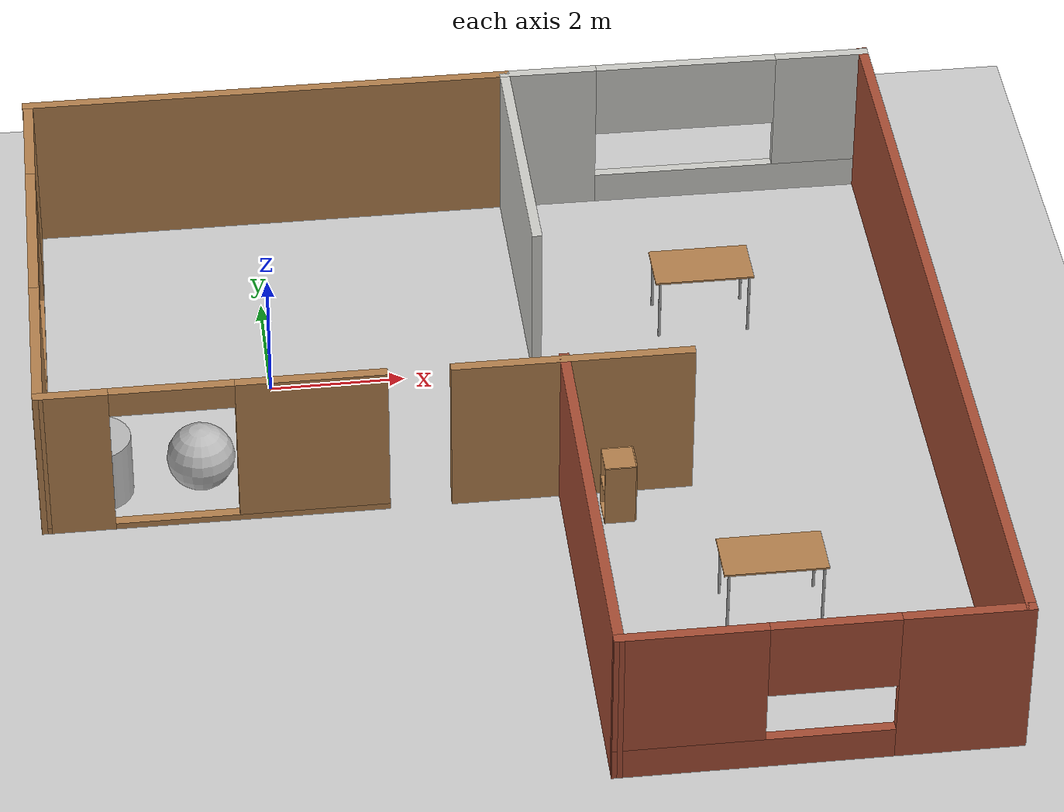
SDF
<sdf version="1.6">
 <world name="default">
  <light name="sun" type="directional">
   <pose>0 0 10 0 -0 0</pose>
   <diffuse>0.8 0.8 0.8 1</diffuse>
   <specular>0.2 0.2 0.2 1</specular>
   <attenuation>
    <range>1000</range>
    <constant>0.9</constant>
    <linear>0.01</linear>
    <quadratic>0.001</quadratic>
   </attenuation>
   <direction>-0.5 0.1 -0.9</direction>
  </light>
  <model name="ground_plane">
   <static>1</static>
   <link name="link">
    <collision name="collision">
     <geometry><plane><normal>0 0 1</normal><size>100 100</size></plane></geometry>
     <surface>
      <contact><collide_bitmask>65535</collide_bitmask></contact>
      <friction><ode><mu>100</mu><mu2>50</mu2></ode></friction>
     </surface>
    </collision>
    <visual name="visual">
     <cast_shadows>0</cast_shadows>
     <geometry><plane><normal>0 0 1</normal><size>100 100</size></plane></geometry>
     <material>
      <script><uri>file://media/materials/scripts/gazebo.material</uri><name>Gazebo/Grey</name></script>
     </material>
    </visual>
   </link>
  </model>
  <gravity>0 0 -9.8</gravity>
  <magnetic_field>6e-06 2.3e-05 -4.2e-05</magnetic_field>
  <atmosphere type="adiabatic"/>
  <physics name="default_physics" default="0" type="ode">
   <max_step_size>0.001</max_step_size>
   <real_time_factor>1</real_time_factor>
   <real_time_update_rate>1000</real_time_update_rate>
  </physics>
  <scene><ambient>0.4 0.4 0.4 1</ambient><background>0.7 0.7 0.7 1</background><shadows>1</shadows></scene>
  <spherical_coordinates>
   <surface_model>EARTH_WGS84</surface_model>
   <latitude_deg>0</latitude_deg>
   <longitude_deg>0</longitude_deg>
   <elevation>0</elevation>
   <heading_deg>0</heading_deg>
  </spherical_coordinates>
  <model name="three_rooms">
   <pose>3.06065 -2.36247 0 0 -0 0</pose>
   <link name="Wall_1">
    <collision name="Wall_1_Collision">
     <geometry><box><size>7.5 0.15 2.5</size></box></geometry>
     <pose>0 0 1.25 0 -0 0</pose>
    </collision>
    <visual name="Wall_1_Visual">
     <pose>0 0 1.25 0 -0 0</pose>
     <geometry><box><size>7.5 0.15 2.5</size></box></geometry>
     <material>
      <script><uri>file://media/materials/scripts/gazebo.material</uri><name>Gazebo/Wood</name></script>
      <ambient>1 1 1 1</ambient>
     </material>
     <meta><layer>0</layer></meta>
    </visual>
    <pose>-2.72664 6.55831 0 0 -0 0</pose>
   </link>
   <link name="Wall_24">
    <collision name="Wall_24_Collision">
     <geometry><box><size>4.25 0.15 2.5</size></box></geometry>
     <pose>0 0 1.25 0 -0 0</pose>
    </collision>
    <visual name="Wall_24_Visual">
     <pose>0 0 1.25 0 -0 0</pose>
     <geometry><box><size>4.25 0.15 2.5</size></box></geometry>
     <material>
      <script><uri>file://media/materials/scripts/gazebo.material</uri><name>Gazebo/CeilingTiled</name></script>
      <ambient>1 1 1 1</ambient>
     </material>
     <meta><layer>0</layer></meta>
    </visual>
    <pose>0.948357 4.50831 0 0 0 -1.5708</pose>
   </link>
   <link name="Wall_26">
    <pose>3.74836 6.54082 0 0 0 -0.006246</pose>
    <visual name="Wall_26_Visual_0">
     <pose>-2.12556 0 1.25 0 -0 0</pose>
     <geometry><box><size>1.49888 0.15 2.5</size></box></geometry>
     <material>
      <script><uri>file://media/materials/scripts/gazebo.material</uri><name>Gazebo/CeilingTiled</name></script>
      <ambient>1 1 1 1</ambient>
     </material>
     <meta><layer>0</layer></meta>
    </visual>
    <collision name="Wall_26_Collision_0">
     <geometry><box><size>1.49888 0.15 2.5</size></box></geometry>
     <pose>-2.12556 0 1.25 0 -0 0</pose>
    </collision>
    <visual name="Wall_26_Visual_1">
     <pose>0.74944 0 0.25 0 -0 0</pose>
     <geometry><box><size>4.25112 0.15 0.5</size></box></geometry>
     <material>
      <script><uri>file://media/materials/scripts/gazebo.material</uri><name>Gazebo/CeilingTiled</name></script>
      <ambient>1 1 1 1</ambient>
     </material>
     <meta><layer>0</layer></meta>
    </visual>
    <collision name="Wall_26_Collision_1">
     <geometry><box><size>4.25112 0.15 0.5</size></box></geometry>
     <pose>0.74944 0 0.25 0 -0 0</pose>
    </collision>
    <visual name="Wall_26_Visual_2">
     <pose>2.14944 0 1.5 0 -0 0</pose>
     <geometry><box><size>1.45112 0.15 2</size></box></geometry>
     <material>
      <script><uri>file://media/materials/scripts/gazebo.material</uri><name>Gazebo/CeilingTiled</name></script>
      <ambient>1 1 1 1</ambient>
     </material>
     <meta><layer>0</layer></meta>
    </visual>
    <collision name="Wall_26_Collision_2">
     <geometry><box><size>1.45112 0.15 2</size></box></geometry>
     <pose>2.14944 0 1.5 0 -0 0</pose>
    </collision>
    <visual name="Wall_26_Visual_3">
     <pose>0.023881 0 1.9 0 -0 0</pose>
     <geometry><box><size>2.8 0.15 1.2</size></box></geometry>
     <material>
      <script><uri>file://media/materials/scripts/gazebo.material</uri><name>Gazebo/CeilingTiled</name></script>
      <ambient>1 1 1 1</ambient>
     </material>
     <meta><layer>0</layer></meta>
    </visual>
    <collision name="Wall_26_Collision_3">
     <geometry><box><size>2.8 0.15 1.2</size></box></geometry>
     <pose>0.023881 0 1.9 0 -0 0</pose>
    </collision>
   </link>
   <link name="Wall_28">
    <collision name="Wall_28_Collision">
     <geometry><box><size>13.25 0.15 2.5</size></box></geometry>
     <pose>0 0 1.25 0 -0 0</pose>
    </collision>
    <visual name="Wall_28_Visual">
     <pose>0 0 1.25 0 -0 0</pose>
     <geometry><box><size>13.25 0.15 2.5</size></box></geometry>
     <material>
      <script><uri>file://media/materials/scripts/gazebo.material</uri><name>Gazebo/Bricks</name></script>
      <ambient>1 1 1 1</ambient>
     </material>
     <meta><layer>0</layer></meta>
    </visual>
    <pose>6.54836 -0.009179 0 0 0 -1.5708</pose>
   </link>
   <link name="Wall_3">
    <pose>-6.46777 3.00831 0 0 0 -1.59315</pose>
    <visual name="Wall_3_Visual_0">
     <pose>-2.70702 0 1.25 0 -0 0</pose>
     <geometry><box><size>1.83719 0.15 2.5</size></box></geometry>
     <material>
      <script><uri>file://media/materials/scripts/gazebo.material</uri><name>Gazebo/Wood</name></script>
      <ambient>1 1 1 1</ambient>
     </material>
     <meta><layer>0</layer></meta>
    </visual>
    <collision name="Wall_3_Collision_0">
     <geometry><box><size>1.83719 0.15 2.5</size></box></geometry>
     <pose>-2.70702 0 1.25 0 -0 0</pose>
    </collision>
    <visual name="Wall_3_Visual_1">
     <pose>0.918596 0 0.05 0 -0 0</pose>
     <geometry><box><size>5.41404 0.15 0.1</size></box></geometry>
     <material>
      <script><uri>file://media/materials/scripts/gazebo.material</uri><name>Gazebo/Wood</name></script>
      <ambient>1 1 1 1</ambient>
     </material>
     <meta><layer>0</layer></meta>
    </visual>
    <collision name="Wall_3_Collision_1">
     <geometry><box><size>5.41404 0.15 0.1</size></box></geometry>
     <pose>0.918596 0 0.05 0 -0 0</pose>
    </collision>
    <visual name="Wall_3_Visual_2">
     <pose>2.3186 0 1.3 0 -0 0</pose>
     <geometry><box><size>2.61404 0.15 2.4</size></box></geometry>
     <material>
      <script><uri>file://media/materials/scripts/gazebo.material</uri><name>Gazebo/Wood</name></script>
      <ambient>1 1 1 1</ambient>
     </material>
     <meta><layer>0</layer></meta>
    </visual>
    <collision name="Wall_3_Collision_2">
     <geometry><box><size>2.61404 0.15 2.4</size></box></geometry>
     <pose>2.3186 0 1.3 0 -0 0</pose>
    </collision>
    <visual name="Wall_3_Visual_3">
     <pose>-0.388425 0 2.3 0 -0 0</pose>
     <geometry><box><size>2.8 0.15 0.4</size></box></geometry>
     <material>
      <script><uri>file://media/materials/scripts/gazebo.material</uri><name>Gazebo/Wood</name></script>
      <ambient>1 1 1 1</ambient>
     </material>
     <meta><layer>0</layer></meta>
    </visual>
    <collision name="Wall_3_Collision_3">
     <geometry><box><size>2.8 0.15 0.4</size></box></geometry>
     <pose>-0.388425 0 2.3 0 -0 0</pose>
    </collision>
   </link>
   <link name="Wall_30">
    <pose>3.74836 -6.55918 0 0 -0 3.14159</pose>
    <visual name="Wall_30_Visual_0">
     <pose>-1.95764 0 1.25 0 -0 0</pose>
     <geometry><box><size>1.83472 0.15 2.5</size></box></geometry>
     <material>
      <script><uri>file://media/materials/scripts/gazebo.material</uri><name>Gazebo/Bricks</name></script>
      <ambient>1 1 1 1</ambient>
     </material>
     <meta><layer>0</layer></meta>
    </visual>
    <collision name="Wall_30_Collision_0">
     <geometry><box><size>1.83472 0.15 2.5</size></box></geometry>
     <pose>-1.95764 0 1.25 0 -0 0</pose>
    </collision>
    <visual name="Wall_30_Visual_1">
     <pose>0.91736 0 0.25 0 -0 0</pose>
     <geometry><box><size>3.91528 0.15 0.5</size></box></geometry>
     <material>
      <script><uri>file://media/materials/scripts/gazebo.material</uri><name>Gazebo/Bricks</name></script>
      <ambient>1 1 1 1</ambient>
     </material>
     <meta><layer>0</layer></meta>
    </visual>
    <collision name="Wall_30_Collision_1">
     <geometry><box><size>3.91528 0.15 0.5</size></box></geometry>
     <pose>0.91736 0 0.25 0 -0 0</pose>
    </collision>
    <visual name="Wall_30_Visual_2">
     <pose>1.81736 0 1.5 0 -0 0</pose>
     <geometry><box><size>2.11528 0.15 2</size></box></geometry>
     <material>
      <script><uri>file://media/materials/scripts/gazebo.material</uri><name>Gazebo/Bricks</name></script>
      <ambient>1 1 1 1</ambient>
     </material>
     <meta><layer>0</layer></meta>
    </visual>
    <collision name="Wall_30_Collision_2">
     <geometry><box><size>2.11528 0.15 2</size></box></geometry>
     <pose>1.81736 0 1.5 0 -0 0</pose>
    </collision>
    <visual name="Wall_30_Visual_3">
     <pose>-0.140281 0 1.9 0 -0 0</pose>
     <geometry><box><size>1.8 0.15 1.2</size></box></geometry>
     <material>
      <script><uri>file://media/materials/scripts/gazebo.material</uri><name>Gazebo/Bricks</name></script>
      <ambient>1 1 1 1</ambient>
     </material>
     <meta><layer>0</layer></meta>
    </visual>
    <collision name="Wall_30_Collision_3">
     <geometry><box><size>1.8 0.15 1.2</size></box></geometry>
     <pose>-0.140281 0 1.9 0 -0 0</pose>
    </collision>
   </link>
   <link name="Wall_34">
    <collision name="Wall_34_Collision">
     <geometry><box><size>6.21222 0.15 2.5</size></box></geometry>
     <pose>0 0 1.25 0 -0 0</pose>
    </collision>
    <visual name="Wall_34_Visual">
     <pose>0 0 1.25 0 -0 0</pose>
     <geometry><box><size>6.21222 0.15 2.5</size></box></geometry>
     <material>
      <script><uri>file://media/materials/scripts/gazebo.material</uri><name>Gazebo/Bricks</name></script>
      <ambient>1 1 1 1</ambient>
     </material>
     <meta><layer>0</layer></meta>
    </visual>
    <pose>0.969344 -3.52814 0 0 0 -1.57772</pose>
   </link>
   <link name="Wall_5">
    <pose>-1.87212 -0.541689 0 0 -0 0</pose>
    <visual name="Wall_5_Visual_0">
     <pose>-4.21273 0 1.25 0 -0 0</pose>
     <geometry><box><size>1.07454 0.15 2.5</size></box></geometry>
     <material>
      <script><uri>file://media/materials/scripts/gazebo.material</uri><name>Gazebo/Wood</name></script>
      <ambient>1 1 1 1</ambient>
     </material>
     <meta><layer>0</layer></meta>
    </visual>
    <collision name="Wall_5_Collision_0">
     <geometry><box><size>1.07454 0.15 2.5</size></box></geometry>
     <pose>-4.21273 0 1.25 0 -0 0</pose>
    </collision>
    <visual name="Wall_5_Visual_1">
     <pose>2.98235 0 1.25 0 -0 0</pose>
     <geometry><box><size>3.5353 0.15 2.5</size></box></geometry>
     <material>
      <script><uri>file://media/materials/scripts/gazebo.material</uri><name>Gazebo/Wood</name></script>
      <ambient>1 1 1 1</ambient>
     </material>
     <meta><layer>0</layer></meta>
    </visual>
    <collision name="Wall_5_Collision_1">
     <geometry><box><size>3.5353 0.15 2.5</size></box></geometry>
     <pose>2.98235 0 1.25 0 -0 0</pose>
    </collision>
    <visual name="Wall_5_Visual_2">
     <pose>-1.68038 0 0.05 0 -0 0</pose>
     <geometry><box><size>3.99016 0.15 0.1</size></box></geometry>
     <material>
      <script><uri>file://media/materials/scripts/gazebo.material</uri><name>Gazebo/Wood</name></script>
      <ambient>1 1 1 1</ambient>
     </material>
     <meta><layer>0</layer></meta>
    </visual>
    <collision name="Wall_5_Collision_2">
     <geometry><box><size>3.99016 0.15 0.1</size></box></geometry>
     <pose>-1.68038 0 0.05 0 -0 0</pose>
    </collision>
    <visual name="Wall_5_Visual_3">
     <pose>-0.780377 0 1.3 0 -0 0</pose>
     <geometry><box><size>2.19016 0.15 2.4</size></box></geometry>
     <material>
      <script><uri>file://media/materials/scripts/gazebo.material</uri><name>Gazebo/Wood</name></script>
      <ambient>1 1 1 1</ambient>
     </material>
     <meta><layer>0</layer></meta>
    </visual>
    <collision name="Wall_5_Collision_3">
     <geometry><box><size>2.19016 0.15 2.4</size></box></geometry>
     <pose>-0.780377 0 1.3 0 -0 0</pose>
    </collision>
    <visual name="Wall_5_Visual_4">
     <pose>-2.77546 0 2.3 0 -0 0</pose>
     <geometry><box><size>1.8 0.15 0.4</size></box></geometry>
     <material>
      <script><uri>file://media/materials/scripts/gazebo.material</uri><name>Gazebo/Wood</name></script>
      <ambient>1 1 1 1</ambient>
     </material>
     <meta><layer>0</layer></meta>
    </visual>
    <collision name="Wall_5_Collision_4">
     <geometry><box><size>1.8 0.15 0.4</size></box></geometry>
     <pose>-2.77546 0 2.3 0 -0 0</pose>
    </collision>
   </link>
   <static>1</static>
  </model>
  <model name="table">
   <static>1</static>
   <link name="link">
    <collision name="surface">
     <pose>0 0 1 0 -0 0</pose>
     <geometry><box><size>1.5 0.8 0.03</size></box></geometry>
     <surface><friction><ode><mu>0.6</mu><mu2>0.6</mu2></ode></friction></surface>
    </collision>
    <visual name="visual1">
     <pose>0 0 1 0 -0 0</pose>
     <geometry><box><size>1.5 0.8 0.03</size></box></geometry>
     <material>
      <script><uri>file://media/materials/scripts/gazebo.material</uri><name>Gazebo/Wood</name></script>
     </material>
    </visual>
    <collision name="front_left_leg">
     <pose>0.68 0.38 0.5 0 -0 0</pose>
     <geometry><cylinder><radius>0.02</radius><length>1</length></cylinder></geometry>
    </collision>
    <visual name="front_left_leg">
     <pose>0.68 0.38 0.5 0 -0 0</pose>
     <geometry><cylinder><radius>0.02</radius><length>1</length></cylinder></geometry>
     <material>
      <script><uri>file://media/materials/scripts/gazebo.material</uri><name>Gazebo/Grey</name></script>
     </material>
    </visual>
    <collision name="front_right_leg">
     <pose>0.68 -0.38 0.5 0 -0 0</pose>
     <geometry><cylinder><radius>0.02</radius><length>1</length></cylinder></geometry>
    </collision>
    <visual name="front_right_leg">
     <pose>0.68 -0.38 0.5 0 -0 0</pose>
     <geometry><cylinder><radius>0.02</radius><length>1</length></cylinder></geometry>
     <material>
      <script><uri>file://media/materials/scripts/gazebo.material</uri><name>Gazebo/Grey</name></script>
     </material>
    </visual>
    <collision name="back_right_leg">
     <pose>-0.68 -0.38 0.5 0 -0 0</pose>
     <geometry><cylinder><radius>0.02</radius><length>1</length></cylinder></geometry>
    </collision>
    <visual name="back_right_leg">
     <pose>-0.68 -0.38 0.5 0 -0 0</pose>
     <geometry><cylinder><radius>0.02</radius><length>1</length></cylinder></geometry>
     <material>
      <script><uri>file://media/materials/scripts/gazebo.material</uri><name>Gazebo/Grey</name></script>
     </material>
    </visual>
    <collision name="back_left_leg">
     <pose>-0.68 0.38 0.5 0 -0 0</pose>
     <geometry><cylinder><radius>0.02</radius><length>1</length></cylinder></geometry>
    </collision>
    <visual name="back_left_leg">
     <pose>-0.68 0.38 0.5 0 -0 0</pose>
     <geometry><cylinder><radius>0.02</radius><length>1</length></cylinder></geometry>
     <material>
      <script><uri>file://media/materials/scripts/gazebo.material</uri><name>Gazebo/Grey</name></script>
     </material>
    </visual>
   </link>
   <pose>6.63883 0.982575 0 0 -0 0</pose>
  </model>
  <model name="bookshelf">
   <static>1</static>
   <link name="link">
    <inertial><mass>1</mass></inertial>
    <collision name="back">
     <pose>0 0.005 0.6 0 -0 0</pose>
     <geometry><box><size>0.9 0.01 1.2</size></box></geometry>
    </collision>
    <visual name="visual1">
     <pose>0 0.005 0.6 0 -0 0</pose>
     <geometry><box><size>0.9 0.01 1.2</size></box></geometry>
     <material>
      <script><uri>file://media/materials/scripts/gazebo.material</uri><name>Gazebo/Wood</name></script>
     </material>
    </visual>
    <collision name="left_side">
     <pose>0.45 -0.195 0.6 0 -0 0</pose>
     <geometry><box><size>0.02 0.4 1.2</size></box></geometry>
    </collision>
    <visual name="visual2">
     <pose>0.45 -0.195 0.6 0 -0 0</pose>
     <geometry><box><size>0.02 0.4 1.2</size></box></geometry>
     <material>
      <script><uri>file://media/materials/scripts/gazebo.material</uri><name>Gazebo/Wood</name></script>
     </material>
    </visual>
    <collision name="right_side">
     <pose>-0.45 -0.195 0.6 0 -0 0</pose>
     <geometry><box><size>0.02 0.4 1.2</size></box></geometry>
    </collision>
    <visual name="visual3">
     <pose>-0.45 -0.195 0.6 0 -0 0</pose>
     <geometry><box><size>0.02 0.4 1.2</size></box></geometry>
     <material>
      <script><uri>file://media/materials/scripts/gazebo.material</uri><name>Gazebo/Wood</name></script>
     </material>
    </visual>
    <collision name="bottom">
     <pose>0 -0.195 0.03 0 -0 0</pose>
     <geometry><box><size>0.88 0.4 0.06</size></box></geometry>
    </collision>
    <visual name="visual4">
     <pose>0 -0.195 0.03 0 -0 0</pose>
     <geometry><box><size>0.88 0.4 0.06</size></box></geometry>
     <material>
      <script><uri>file://media/materials/scripts/gazebo.material</uri><name>Gazebo/Wood</name></script>
     </material>
    </visual>
    <collision name="top">
     <pose>0 -0.195 1.19 0 -0 0</pose>
     <geometry><box><size>0.88 0.4 0.02</size></box></geometry>
    </collision>
    <visual name="visual5">
     <pose>0 -0.195 1.19 0 -0 0</pose>
     <geometry><box><size>0.88 0.4 0.02</size></box></geometry>
     <material>
      <script><uri>file://media/materials/scripts/gazebo.material</uri><name>Gazebo/Wood</name></script>
     </material>
    </visual>
    <collision name="low_shelf">
     <pose>0 -0.195 0.43 0 -0 0</pose>
     <geometry><box><size>0.88 0.4 0.02</size></box></geometry>
    </collision>
    <visual name="visual6">
     <pose>0 -0.195 0.43 0 -0 0</pose>
     <geometry><box><size>0.88 0.4 0.02</size></box></geometry>
     <material>
      <script><uri>file://media/materials/scripts/gazebo.material</uri><name>Gazebo/Wood</name></script>
     </material>
    </visual>
    <collision name="high_shelf">
     <pose>0 -0.195 0.8 0 -0 0</pose>
     <geometry><box><size>0.88 0.4 0.02</size></box></geometry>
    </collision>
    <visual name="visual7">
     <pose>0 -0.195 0.8 0 -0 0</pose>
     <geometry><box><size>0.88 0.4 0.02</size></box></geometry>
     <material>
      <script><uri>file://media/materials/scripts/gazebo.material</uri><name>Gazebo/Wood</name></script>
     </material>
    </visual>
   </link>
   <pose>8.53702 -8.15375 0 0 -0 0</pose>
  </model>
  <model name="cabinet">
   <static>1</static>
   <link name="cabinet_bottom_plate">
    <inertial>
     <pose>0 0 -1 0 -0 0</pose>
     <inertia><ixx>2.05</ixx><ixy>0</ixy><ixz>0</ixz><iyy>2.05</iyy><iyz>0</iyz><izz>2.05</izz></inertia>
     <mass>25</mass>
    </inertial>
    <collision name="cabinet_bottom_plate_geom">
     <pose>0 0 0.01 0 -0 0</pose>
     <geometry><box><size>0.45 0.45 0.02</size></box></geometry>
    </collision>
    <visual name="cabinet_bottom_plate_geom_visual">
     <pose>0 0 0.01 0 -0 0</pose>
     <geometry><box><size>0.45 0.45 0.02</size></box></geometry>
     <material>
      <script><uri>file://media/materials/scripts/gazebo.material</uri><name>Gazebo/Wood</name></script>
     </material>
    </visual>
    <collision name="cabinet_bottom_plate_geom_cabinet_back_plate">
     <pose>0.235 0 0.51 0 -0 0</pose>
     <geometry><box><size>0.02 0.45 1.02</size></box></geometry>
    </collision>
    <visual name="cabinet_bottom_plate_geom_cabinet_back_plate_visual">
     <pose>0.235 0 0.51 0 -0 0</pose>
     <geometry><box><size>0.02 0.45 1.02</size></box></geometry>
     <material>
      <script><uri>file://media/materials/scripts/gazebo.material</uri><name>Gazebo/Wood</name></script>
     </material>
    </visual>
    <collision name="cabinet_bottom_plate_geom_cabinet_left_plate">
     <pose>0 0.235 0.51 0 -0 0</pose>
     <geometry><box><size>0.45 0.02 1.02</size></box></geometry>
    </collision>
    <visual name="cabinet_bottom_plate_geom_cabinet_left_plate_visual">
     <pose>0 0.235 0.51 0 -0 0</pose>
     <geometry><box><size>0.45 0.02 1.02</size></box></geometry>
     <material>
      <script><uri>file://media/materials/scripts/gazebo.material</uri><name>Gazebo/Wood</name></script>
     </material>
    </visual>
    <collision name="cabinet_bottom_plate_geom_cabinet_middle_plate">
     <pose>0 0 0.51 0 -0 0</pose>
     <geometry><box><size>0.45 0.45 0.02</size></box></geometry>
    </collision>
    <visual name="cabinet_bottom_plate_geom_cabinet_middle_plate_visual">
     <pose>0 0 0.51 0 -0 0</pose>
     <geometry><box><size>0.45 0.45 0.02</size></box></geometry>
     <material>
      <script><uri>file://media/materials/scripts/gazebo.material</uri><name>Gazebo/Wood</name></script>
     </material>
    </visual>
    <collision name="cabinet_bottom_plate_geom_cabinet_right_plate">
     <pose>0 -0.235 0.51 0 -0 0</pose>
     <geometry><box><size>0.45 0.02 1.02</size></box></geometry>
    </collision>
    <visual name="cabinet_bottom_plate_geom_cabinet_right_plate_visual">
     <pose>0 -0.235 0.51 0 -0 0</pose>
     <geometry><box><size>0.45 0.02 1.02</size></box></geometry>
     <material>
      <script><uri>file://media/materials/scripts/gazebo.material</uri><name>Gazebo/Wood</name></script>
     </material>
    </visual>
    <collision name="cabinet_bottom_plate_geom_cabinet_top_plate">
     <pose>0 0 1.01 0 -0 0</pose>
     <geometry><box><size>0.45 0.45 0.02</size></box></geometry>
    </collision>
    <visual name="cabinet_bottom_plate_geom_cabinet_top_plate_visual">
     <pose>0 0 1.01 0 -0 0</pose>
     <geometry><box><size>0.45 0.45 0.02</size></box></geometry>
     <material>
      <script><uri>file://media/materials/scripts/gazebo.material</uri><name>Gazebo/Wood</name></script>
     </material>
    </visual>
   </link>
   <pose>4.77547 -3.43053 0 0 -0 0</pose>
  </model>
  <model name="textured_shapes">
   <pose>-1.18063 -2.08438 0.51 0 -0 1.56847</pose>
   <link name="box">
    <pose>0 -1.5 0 0 -0 0</pose>
    <collision name="collision"><geometry><box><size>1 1 1</size></box></geometry></collision>
    <visual name="visual">
     <geometry><box><size>1 1 1</size></box></geometry>
     <material>
      <script>
       <uri>model://textured_shapes/materials/scripts</uri>
       <uri>model://textured_shapes/materials/textures</uri>
       <name>TexturedShape/Squares</name>
      </script>
     </material>
    </visual>
    <inertial>
     <inertia><ixx>1</ixx><ixy>0</ixy><ixz>0</ixz><iyy>1</iyy><iyz>0</iyz><izz>1</izz></inertia>
     <mass>1</mass>
    </inertial>
   </link>
   <link name="sphere">
    <collision name="collision"><geometry><sphere><radius>0.5</radius></sphere></geometry></collision>
    <visual name="visual">
     <geometry><sphere><radius>0.5</radius></sphere></geometry>
     <material>
      <script>
       <uri>model://textured_shapes/materials/scripts</uri>
       <uri>model://textured_shapes/materials/textures</uri>
       <name>TexturedShape/Squares</name>
      </script>
     </material>
    </visual>
    <inertial>
     <inertia><ixx>1</ixx><ixy>0</ixy><ixz>0</ixz><iyy>1</iyy><iyz>0</iyz><izz>1</izz></inertia>
     <mass>1</mass>
    </inertial>
   </link>
   <link name="cylinder">
    <pose>0 1.5 0 0 -0 0</pose>
    <collision name="collision">
     <geometry><cylinder><radius>0.5</radius><length>1</length></cylinder></geometry>
    </collision>
    <visual name="visual">
     <geometry><cylinder><radius>0.5</radius><length>1</length></cylinder></geometry>
     <material>
      <script>
       <uri>model://textured_shapes/materials/scripts</uri>
       <uri>model://textured_shapes/materials/textures</uri>
       <name>TexturedShape/Squares</name>
      </script>
     </material>
    </visual>
    <inertial>
     <inertia><ixx>1</ixx><ixy>0</ixy><ixz>0</ixz><iyy>1</iyy><iyz>0</iyz><izz>1</izz></inertia>
     <mass>1</mass>
    </inertial>
   </link>
  </model>
  <model name="table_0">
   <static>1</static>
   <link name="link">
    <collision name="surface">
     <pose>0 0 1 0 -0 0</pose>
     <geometry><box><size>1.5 0.8 0.03</size></box></geometry>
     <surface><friction><ode><mu>0.6</mu><mu2>0.6</mu2></ode></friction></surface>
    </collision>
    <visual name="visual1">
     <pose>0 0 1 0 -0 0</pose>
     <geometry><box><size>1.5 0.8 0.03</size></box></geometry>
     <material>
      <script><uri>file://media/materials/scripts/gazebo.material</uri><name>Gazebo/Wood</name></script>
     </material>
    </visual>
    <collision name="front_left_leg">
     <pose>0.68 0.38 0.5 0 -0 0</pose>
     <geometry><cylinder><radius>0.02</radius><length>1</length></cylinder></geometry>
    </collision>
    <visual name="front_left_leg">
     <pose>0.68 0.38 0.5 0 -0 0</pose>
     <geometry><cylinder><radius>0.02</radius><length>1</length></cylinder></geometry>
     <material>
      <script><uri>file://media/materials/scripts/gazebo.material</uri><name>Gazebo/Grey</name></script>
     </material>
    </visual>
    <collision name="front_right_leg">
     <pose>0.68 -0.38 0.5 0 -0 0</pose>
     <geometry><cylinder><radius>0.02</radius><length>1</length></cylinder></geometry>
    </collision>
    <visual name="front_right_leg">
     <pose>0.68 -0.38 0.5 0 -0 0</pose>
     <geometry><cylinder><radius>0.02</radius><length>1</length></cylinder></geometry>
     <material>
      <script><uri>file://media/materials/scripts/gazebo.material</uri><name>Gazebo/Grey</name></script>
     </material>
    </visual>
    <collision name="back_right_leg">
     <pose>-0.68 -0.38 0.5 0 -0 0</pose>
     <geometry><cylinder><radius>0.02</radius><length>1</length></cylinder></geometry>
    </collision>
    <visual name="back_right_leg">
     <pose>-0.68 -0.38 0.5 0 -0 0</pose>
     <geometry><cylinder><radius>0.02</radius><length>1</length></cylinder></geometry>
     <material>
      <script><uri>file://media/materials/scripts/gazebo.material</uri><name>Gazebo/Grey</name></script>
     </material>
    </visual>
    <collision name="back_left_leg">
     <pose>-0.68 0.38 0.5 0 -0 0</pose>
     <geometry><cylinder><radius>0.02</radius><length>1</length></cylinder></geometry>
    </collision>
    <visual name="back_left_leg">
     <pose>-0.68 0.38 0.5 0 -0 0</pose>
     <geometry><cylinder><radius>0.02</radius><length>1</length></cylinder></geometry>
     <material>
      <script><uri>file://media/materials/scripts/gazebo.material</uri><name>Gazebo/Grey</name></script>
     </material>
    </visual>
   </link>
   <pose>6.65064 -5.7535 0 0 -0 0</pose>
  </model>
 </world>
</sdf>
